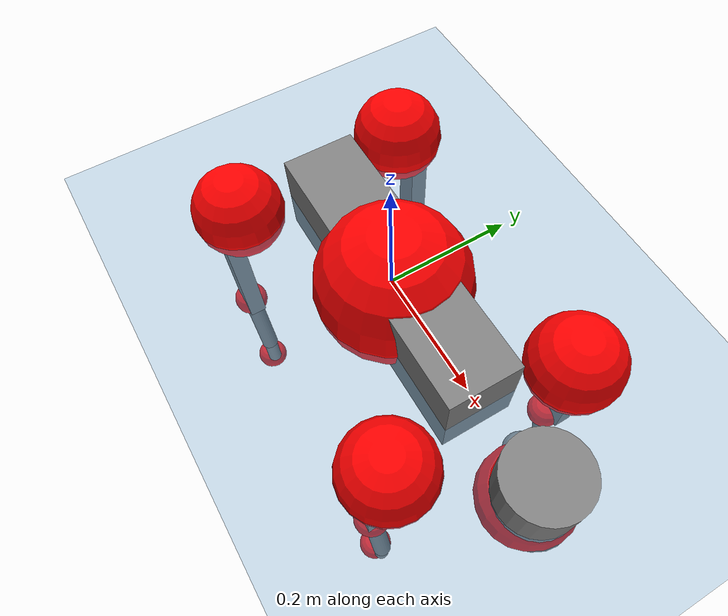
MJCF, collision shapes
<mujoco model="go2">
  <compiler angle="radian" assetdir="assets" balanceinertia="true" inertiafromgeom="false"/>

  <option timestep="0.005" density="1.2" viscosity="2e-05"/>

  <size nkey="1"/>

  <visual>
    <quality shadowsize="8192"/>
    <map shadowclip="0.5"/>
  </visual>

  <default>
    <default class="/">
      <geom contype="0" conaffinity="0" group="1" solref="-1000 -80"/>
      <site size="0.01 0.005 0.005" group="5"/>
      <general forcelimited="true" biastype="affine" gainprm="20" biasprm="0 -20 -0.5"/>
      <default class="go2">
        <joint armature="0.01" damping="0.01" frictionloss="0.2"/>
        <geom condim="1" margin="0.001"/>
        <default class="visual">
          <geom type="mesh" group="2"/>
        </default>
        <default class="collision">
          <geom group="3"/>
          <default class="foot">
            <geom size="0.022 0 0" condim="6" priority="1" friction="0.8 0.02 0.01" solimp="0.015 1 0.022"/>
          </default>
        </default>
        <default class="reward_collision_sphere">
          <geom group="5" rgba="1 0 0 1"/>
        </default>
      </default>
    </default>
  </default>

  <asset>
    <texture type="skybox" colorspace="auto" name="//unnamed_texture_0" builtin="gradient" rgb1="0.95 0.95 0.95" rgb2="0.95 0.95 0.95" width="100" height="600"/>
    <texture type="2d" colorspace="auto" name="texplane" builtin="checker" rgb1="0.345 0.575 0.748" rgb2="0.345 0.575 0.748" markrgb="1 1 1" width="512" height="512"/>
    <material name="MatPlane" class="/" texture="texplane" texuniform="true" texrepeat="2 2" specular="0.9"/>
    <material name="metal" class="/" rgba="0.9 0.95 0.95 1"/>
    <material name="black" class="/" rgba="0 0 0 1"/>
    <material name="white" class="/"/>
    <material name="gray" class="/" rgba="0.671705 0.692426 0.77427 1"/>
    <mesh name="base_0" class="/" file="base_0.obj"/>
    <mesh name="base_1" class="/" file="base_1.obj"/>
    <mesh name="base_2" class="/" file="base_2.obj"/>
    <mesh name="base_3" class="/" file="base_3.obj"/>
    <mesh name="base_4" class="/" file="base_4.obj"/>
    <mesh name="hip_0" class="/" file="hip_0.obj"/>
    <mesh name="hip_1" class="/" file="hip_1.obj"/>
    <mesh name="thigh_0" class="/" file="thigh_0.obj"/>
    <mesh name="thigh_1" class="/" file="thigh_1.obj"/>
    <mesh name="thigh_mirror_0" class="/" file="thigh_mirror_0.obj"/>
    <mesh name="thigh_mirror_1" class="/" file="thigh_mirror_1.obj"/>
    <mesh name="calf_0" class="/" file="calf_0.obj"/>
    <mesh name="calf_1" class="/" file="calf_1.obj"/>
    <mesh name="calf_mirror_0" class="/" file="calf_mirror_0.obj"/>
    <mesh name="calf_mirror_1" class="/" file="calf_mirror_1.obj"/>
    <mesh name="foot" class="/" file="foot.obj"/>
  </asset>

  <worldbody>
    <geom name="floor" class="/" size="100 100 0.125" type="plane" group="0" material="MatPlane"/>
    <light name="toplight_shadow" class="/" pos="0 0 5" dir="0.0990148 0.0990148 -0.990148" type="directional" ambient="0.04 0.04 0.04" diffuse="0.55 0.55 0.55" specular="0.12 0.12 0.12"/>
    <light name="toplight_fill" class="/" pos="0 0 5" dir="0.0990148 0.0990148 -0.990148" type="directional" castshadow="false" ambient="0.04 0.04 0.04" diffuse="0.3 0.3 0.3" specular="0.08 0.08 0.08"/>
    <body name="trunk" childclass="go2" pos="0.00748177 -2.89764e-05 0.00492564" quat="0.999995 -0.00163105 -0.00256154 -0.00111898">
      <inertial pos="0.0312493 -0.00544485 -0.00471803" quat="-0.0382871 0.698439 -0.0128165 0.71453" mass="12.1827" diaginertia="0.258785 0.277735 0.0416929"/>
      <joint name="//unnamed_joint_0" type="free" armature="0" damping="0" frictionloss="0"/>
      <geom name="//unnamed_geom_1" class="visual" material="black" mesh="base_0"/>
      <geom name="//unnamed_geom_2" class="visual" material="black" mesh="base_1"/>
      <geom name="//unnamed_geom_3" class="visual" material="black" mesh="base_2"/>
      <geom name="//unnamed_geom_4" class="visual" material="white" mesh="base_3"/>
      <geom name="//unnamed_geom_5" class="visual" material="gray" mesh="base_4"/>
      <geom name="trunk_1" class="collision" size="0.227587 0.0565639 0.0689656" type="box"/>
      <geom name="trunk_2" class="collision" size="0.0604962 0.0544465" pos="0.35324 0 0.011582" type="cylinder"/>
      <geom name="trunk_3" class="collision" size="0.0568664" pos="0.363156 0 -0.0694917"/>
      <geom name="//unnamed_geom_9" class="reward_collision_sphere" size="0.120992"/>
      <geom name="//unnamed_geom_10" class="reward_collision_sphere" size="0.0725954" pos="0.347043 0 -0.0521188"/>
      <site name="imu" pos="-0.0592978 0.0634946 0.064507" size="0.0120992"/>
      <camera name="track" pos="0 -2.46427 0" quat="0.707107 0.707107 0 0" mode="trackcom"/>
      <camera name="ego_camera" pos="0.386705 0 0.0521188" quat="-0.5 -0.5 0.5 0.5"/>
      <body name="FL_hip" pos="0.239727 0.0599868 0.00440138" quat="0.999981 0.00531274 0.0030374 -0.000502842">
        <inertial pos="-0.00160768 0.00368747 0.00165859" quat="0.515727 0.475283 0.523879 0.483408" mass="1.03897" diaginertia="0.0022283 0.00148398 0.000809037"/>
        <joint name="FL_hip_joint" pos="0 0 0" axis="0.999587 -0.0243184 0.0153198" stiffness="0.010701" range="-1.25929 1.02032" armature="0.00689076" damping="0.0204315" frictionloss="0.244012"/>
        <geom name="//unnamed_geom_11" class="visual" material="metal" mesh="hip_0"/>
        <geom name="//unnamed_geom_12" class="visual" material="gray" mesh="hip_1"/>
        <geom name="//unnamed_geom_13" class="collision" size="0.0556565 0.0241985" pos="0 0.0985708 0" quat="0.707107 0.707107 0 0" type="cylinder"/>
        <geom name="//unnamed_geom_14" class="reward_collision_sphere" size="0.0725954" pos="0 0.0862494 0"/>
        <body name="FL_thigh" pos="-0.0021762 0.119276 0.0030153" quat="1 -9.18554e-06 -8.67092e-06 -9.62405e-07">
          <inertial pos="-0.00601477 -0.0167147 -0.0251256" quat="0.8301 0.0826068 -0.0304889 0.550618" mass="2.08641" diaginertia="0.017582 0.0179962 0.00184333"/>
          <joint name="FL_thigh_joint" pos="0 0 0" axis="-0.00190073 0.999998 0.00102623" range="-1.55085 3.24831" armature="0.0154852" damping="0.0712203" frictionloss="0.244945"/>
          <geom name="//unnamed_geom_15" class="visual" material="metal" mesh="thigh_0"/>
          <geom name="//unnamed_geom_16" class="visual" material="gray" mesh="thigh_1"/>
          <geom name="//unnamed_geom_17" class="collision" size="0.128857 0.0148216 0.0205687" pos="0 0 -0.123348" quat="0.707107 0 0.707107 0" type="box"/>
          <body name="FL_calf" pos="-0.0130364 -0.0114854 -0.253982" quat="1 -9.79097e-05 0.000156833 0.000235484">
            <inertial pos="0.0100064 0.00488401 -0.170777" quat="0.708524 0.000390617 -0.00170658 0.705684" mass="0.377956" diaginertia="0.00404758 0.00430857 0.000114101"/>
            <joint name="FL_calf_joint" pos="0 0 0" axis="-0.00269943 0.999936 -0.0109479" stiffness="0.0613403" range="-2.86097 -0.640389" armature="0.0124072" damping="0" frictionloss="0.238921"/>
            <geom name="//unnamed_geom_18" class="visual" material="gray" mesh="calf_0"/>
            <geom name="//unnamed_geom_19" class="visual" material="black" mesh="calf_1"/>
            <geom name="FL_calf0" class="collision" size="0.0145191 0.0725954" pos="0.00991551 0 -0.0694917" quat="0.994493 0 -0.104807 0" type="cylinder"/>
            <geom name="//unnamed_geom_21" class="collision" size="0.0133092 0.0393225" pos="0.0247888 0 -0.171413" quat="0.999688 0 0.0249974 0" type="cylinder"/>
            <geom name="//unnamed_geom_22" class="visual" pos="0 0 -0.246696" quat="1 0 0 0" material="black" mesh="foot"/>
            <geom name="FL_foot" class="foot" size="0.0379463" pos="-0.00247888 0 -0.246696"/>
            <geom name="//unnamed_geom_24" class="reward_collision_sphere" size="0.0302481"/>
            <geom name="//unnamed_geom_25" class="reward_collision_sphere" size="0.0302481" pos="-0.00247888 0 -0.246696"/>
            <site name="FL_foot" class="foot" pos="-0.00247888 0 -0.246696" size="0.0120992"/>
          </body>
        </body>
      </body>
      <body name="FR_hip" pos="0.235017 -0.0622732 -0.0111571" quat="1 -0.000540303 0.000562714 -0.000361647">
        <inertial pos="-0.00487841 0.00464523 0.00162857" quat="0.528382 0.496844 0.515619 0.456175" mass="1.01874" diaginertia="0.00236361 0.00138493 0.000852404"/>
        <joint name="FR_hip_joint" pos="0 0 0" axis="0.999988 -0.000599189 0.00492155" stiffness="0.00460262" range="-1.20291 1.06989" armature="0.0118592" damping="0" frictionloss="0.208133"/>
        <geom name="//unnamed_geom_26" class="visual" pos="0 6.44123e-10 2.76278e-08" quat="4.63268e-05 1 0 0" material="metal" mesh="hip_0"/>
        <geom name="//unnamed_geom_27" class="visual" pos="0 1.0442e-09 -6.83341e-08" quat="4.63268e-05 1 0 0" material="gray" mesh="hip_1"/>
        <geom name="//unnamed_geom_28" class="collision" size="0.0556565 0.0241985" pos="0 -0.0985708 0" quat="0.707107 0.707107 0 0" type="cylinder"/>
        <geom name="//unnamed_geom_29" class="reward_collision_sphere" size="0.0725954" pos="0 -0.0862494 0"/>
        <body name="FR_thigh" pos="-0.00455643 -0.11779 0.008598" quat="0.999999 0.000679729 0.000356016 -0.00096712">
          <inertial pos="-0.00362642 0.0272997 -0.0264337" quat="0.501327 -0.00339904 0.067345 0.862627" mass="1.70316" diaginertia="0.0159464 0.0142455 0.00157279"/>
          <joint name="FR_thigh_joint" pos="0 0 0" axis="0.00902629 -0.999955 0.00297417" stiffness="0.0138681" range="-3.26806 1.39931" armature="0.016895" damping="0.015843" frictionloss="0.227308"/>
          <geom name="//unnamed_geom_30" class="visual" material="metal" mesh="thigh_mirror_0"/>
          <geom name="//unnamed_geom_31" class="visual" material="gray" mesh="thigh_mirror_1"/>
          <geom name="//unnamed_geom_32" class="collision" size="0.128857 0.0148216 0.0205687" pos="0 0 -0.123348" quat="0.707107 0 0.707107 0" type="box"/>
          <body name="FR_calf" pos="0.000207626 0.00133257 -0.245373" quat="1 0.000174392 2.77146e-05 -6.99608e-05">
            <inertial pos="0.00705635 0.00228629 -0.176835" quat="0.696746 -0.0275713 0.0117741 0.716691" mass="0.54885" diaginertia="0.00483084 0.00407861 0.000145603"/>
            <joint name="FR_calf_joint" pos="0 0 0" axis="-0.00247173 -0.999923 0.0121524" stiffness="0.0262152" range="0.870167 2.82615" armature="0.00731463" damping="0.004534" frictionloss="0.247512"/>
            <geom name="//unnamed_geom_33" class="visual" material="gray" mesh="calf_mirror_0"/>
            <geom name="//unnamed_geom_34" class="visual" material="black" mesh="calf_mirror_1"/>
            <geom name="FR_calf0" class="collision" size="0.015729 0.0725954" pos="0.0123944 0 -0.0694917" quat="0.995004 0 -0.0998334 0" type="cylinder"/>
            <geom name="//unnamed_geom_36" class="collision" size="0.0133092 0.0393225" pos="0.0247888 0 -0.171413" quat="0.999688 0 0.0249974 0" type="cylinder"/>
            <geom name="//unnamed_geom_37" class="visual" pos="0 0 -0.246696" quat="1 0 0 0" material="black" mesh="foot"/>
            <geom name="FR_foot" class="foot" size="0.0215142" pos="-0.00247888 0 -0.246696"/>
            <geom name="//unnamed_geom_39" class="reward_collision_sphere" size="0.0302481"/>
            <geom name="//unnamed_geom_40" class="reward_collision_sphere" size="0.0302481" pos="-0.00247888 0 -0.246696"/>
            <site name="FR_foot" class="foot" pos="-0.00247888 0 -0.246696" size="0.0120992"/>
          </body>
        </body>
      </body>
      <body name="RL_hip" pos="-0.239179 0.0618029 0.0108212" quat="1 -0.000200546 -0.000356361 -3.90215e-05">
        <inertial pos="0.00822177 0.00148253 0.010526" quat="0.505488 0.497888 0.496886 0.499693" mass="1.03878" diaginertia="0.00226432 0.00183218 0.00100778"/>
        <joint name="RL_hip_joint" pos="0 0 0" axis="-0.999926 0.0108217 0.00563786" range="-1.29346 0.839814" armature="0.0120569" damping="0.0417118" frictionloss="0.116583"/>
        <geom name="//unnamed_geom_41" class="visual" pos="-7.07756e-10 0 -1.38737e-07" quat="4.63268e-05 0 1 0" material="metal" mesh="hip_0"/>
        <geom name="//unnamed_geom_42" class="visual" pos="-1.14736e-09 0 -1.2304e-07" quat="4.63268e-05 0 1 0" material="gray" mesh="hip_1"/>
        <geom name="//unnamed_geom_43" class="collision" size="0.0556565 0.0241985" pos="0 0.0985708 0" quat="0.707107 0.707107 0 0" type="cylinder"/>
        <geom name="//unnamed_geom_44" class="reward_collision_sphere" size="0.0725954" pos="0 0.0862494 0"/>
        <body name="RL_thigh" pos="0.000886716 0.119018 -0.00188826" quat="1 -2.76175e-05 1.03375e-05 -1.0578e-05">
          <inertial pos="0.00541569 -0.0278235 -0.0252473" quat="0.854268 0.0573378 -0.0200427 0.516271" mass="1.95728" diaginertia="0.0188762 0.0161007 0.00197387"/>
          <joint name="RL_thigh_joint" pos="0 0 0" axis="0.0141104 0.998761 -0.0477129" stiffness="0.0130296" range="-0.317427 4.55514" armature="0.0101881" damping="0" frictionloss="0.222902"/>
          <geom name="//unnamed_geom_45" class="visual" material="metal" mesh="thigh_0"/>
          <geom name="//unnamed_geom_46" class="visual" material="gray" mesh="thigh_1"/>
          <geom name="//unnamed_geom_47" class="collision" size="0.128857 0.0148216 0.0205687" pos="0 0 -0.123348" quat="0.707107 0 0.707107 0" type="box"/>
          <body name="RL_calf" pos="0.00646722 -0.00405615 -0.238742" quat="1 0.000474773 -0.000195175 0.000207885">
            <inertial pos="0.00213575 0.00531834 -0.170655" quat="0.707339 0.016959 0.0360025 0.705753" mass="0.477473" diaginertia="0.00437379 0.0040328 0.000116628"/>
            <joint name="RL_calf_joint" pos="0 0 0" axis="-0.0186439 0.999665 0.0179299" stiffness="0.0637773" range="-2.77847 -0.826465" armature="0.0116103" damping="0.00671589" frictionloss="0.17102"/>
            <geom name="//unnamed_geom_48" class="visual" material="gray" mesh="calf_0"/>
            <geom name="//unnamed_geom_49" class="visual" material="black" mesh="calf_1"/>
            <geom name="RL_calf0" class="collision" size="0.015729 0.0725954" pos="0.0123944 0 -0.0694917" quat="0.995004 0 -0.0998334 0" type="cylinder"/>
            <geom name="//unnamed_geom_51" class="collision" size="0.0133092 0.0393225" pos="0.0247888 0 -0.171413" quat="0.999688 0 0.0249974 0" type="cylinder"/>
            <geom name="//unnamed_geom_52" class="visual" pos="0 0 -0.246696" quat="1 0 0 0" material="black" mesh="foot"/>
            <geom name="RL_foot" class="foot" size="0.0232659" pos="-0.00247888 0 -0.246696"/>
            <geom name="//unnamed_geom_54" class="reward_collision_sphere" size="0.0302481"/>
            <geom name="//unnamed_geom_55" class="reward_collision_sphere" size="0.0302481" pos="-0.00247888 0 -0.246696"/>
            <site name="RL_foot" class="foot" pos="-0.00247888 0 -0.246696" size="0.0120992"/>
          </body>
        </body>
      </body>
      <body name="RR_hip" pos="-0.238252 -0.05506 9.2705e-05" quat="0.999999 0.000632915 -0.00146727 0.000487016">
        <inertial pos="0.00819549 -0.0125176 0.00735973" quat="0.500083 0.49558 0.497464 0.506801" mass="1.31091" diaginertia="0.00299144 0.00196651 0.00115086"/>
        <joint name="RR_hip_joint" pos="0 0 0" axis="-0.999891 0.00883752 0.0117852" range="-1.11351 1.22355" armature="0.0151228" damping="0.0580571" frictionloss="0.204661"/>
        <geom name="//unnamed_geom_56" class="visual" pos="7.07503e-10 6.44123e-10 -1.66364e-07" quat="2.14617e-09 4.63268e-05 4.63268e-05 -1" material="metal" mesh="hip_0"/>
        <geom name="//unnamed_geom_57" class="visual" pos="1.14798e-09 1.0442e-09 -5.47055e-08" quat="2.14617e-09 4.63268e-05 4.63268e-05 -1" material="gray" mesh="hip_1"/>
        <geom name="//unnamed_geom_58" class="collision" size="0.0556565 0.0241985" pos="0 -0.0985708 0" quat="0.707107 0.707107 0 0" type="cylinder"/>
        <geom name="//unnamed_geom_59" class="reward_collision_sphere" size="0.0725954" pos="0 -0.0862494 0"/>
        <body name="RR_thigh" pos="-0.000511224 -0.116519 -0.0110671" quat="1 -0.000202434 -0.000238835 -3.96101e-06">
          <inertial pos="0.00167893 0.0199319 -0.0380863" quat="0.553325 -0.0212978 0.0843629 0.828408" mass="2.524" diaginertia="0.0183193 0.0183063 0.00181296"/>
          <joint name="RR_thigh_joint" pos="0 0 0" axis="-0.0162719 -0.999805 -0.0111566" range="-4.31606 0.318351" armature="0.0126895" damping="0.00675772" frictionloss="0.352202"/>
          <geom name="//unnamed_geom_60" class="visual" material="metal" mesh="thigh_mirror_0"/>
          <geom name="//unnamed_geom_61" class="visual" material="gray" mesh="thigh_mirror_1"/>
          <geom name="//unnamed_geom_62" class="collision" size="0.128857 0.0148216 0.0205687" pos="0 0 -0.123348" quat="0.707107 0 0.707107 0" type="box"/>
          <body name="RR_calf" pos="-0.0114003 8.14974e-05 -0.247453" quat="1 -0.000216687 8.57414e-05 -5.56821e-05">
            <inertial pos="0.00486607 0.000460735 -0.164893" quat="0.703812 -0.00518595 0.00186083 0.710365" mass="0.51092" diaginertia="0.00479799 0.00446874 0.000122017"/>
            <joint name="RR_calf_joint" pos="0 0 0" axis="0.0259454 -0.999565 0.0140233" stiffness="0.0410728" range="0.852756 2.60691" armature="0.0145691" damping="0.0647174" frictionloss="0.221815"/>
            <geom name="//unnamed_geom_63" class="visual" material="gray" mesh="calf_mirror_0"/>
            <geom name="//unnamed_geom_64" class="visual" material="black" mesh="calf_mirror_1"/>
            <geom name="RR_calf0" class="collision" size="0.015729 0.0725954" pos="0.0123944 0 -0.0694917" quat="0.995004 0 -0.0998334 0" type="cylinder"/>
            <geom name="//unnamed_geom_66" class="collision" size="0.0133092 0.0393225" pos="0.0247888 0 -0.171413" quat="0.999688 0 0.0249974 0" type="cylinder"/>
            <geom name="//unnamed_geom_67" class="visual" pos="0 0 -0.246696" quat="1 0 0 0" material="black" mesh="foot"/>
            <geom name="RR_foot" class="foot" size="0.0273515" pos="-0.00247888 0 -0.246696"/>
            <geom name="//unnamed_geom_69" class="reward_collision_sphere" size="0.0302481"/>
            <geom name="//unnamed_geom_70" class="reward_collision_sphere" size="0.0302481" pos="-0.00247888 0 -0.246696"/>
            <site name="RR_foot" class="foot" pos="-0.00247888 0 -0.246696" size="0.0120992"/>
          </body>
        </body>
      </body>
    </body>
  </worldbody>

  <contact>
    <pair class="/" geom1="floor" geom2="FL_foot" name="//unnamed_contact_0"/>
    <pair class="/" geom1="floor" geom2="FR_foot" name="//unnamed_contact_1"/>
    <pair class="/" geom1="floor" geom2="RL_foot" name="//unnamed_contact_2"/>
    <pair class="/" geom1="floor" geom2="RR_foot" name="//unnamed_contact_3"/>
  </contact>

  <actuator>
    <general name="FL_hip" class="/" joint="FL_hip_joint" forcerange="-28.1707 28.1707" gainprm="25.8868" biasprm="0 -25.8868 -0.454785"/>
    <general name="FL_thigh" class="/" joint="FL_thigh_joint" forcerange="-18.5369 18.5369" gainprm="25.8868" biasprm="0 -25.8868 -0.454785"/>
    <general name="FL_calf" class="/" joint="FL_calf_joint" forcerange="-76.6116 76.6116" gainprm="25.8868" biasprm="0 -25.8868 -0.454785"/>
    <general name="FR_hip" class="/" joint="FR_hip_joint" forcerange="-29.5685 29.5685" gainprm="25.8868" biasprm="0 -25.8868 -0.454785"/>
    <general name="FR_thigh" class="/" joint="FR_thigh_joint" forcerange="-22.1001 22.1001" gainprm="25.8868" biasprm="0 -25.8868 -0.454785"/>
    <general name="FR_calf" class="/" joint="FR_calf_joint" forcerange="-27.8516 27.8516" gainprm="25.8868" biasprm="0 -25.8868 -0.454785"/>
    <general name="RL_hip" class="/" joint="RL_hip_joint" forcerange="-17.1458 17.1458" gainprm="25.8868" biasprm="0 -25.8868 -0.454785"/>
    <general name="RL_thigh" class="/" joint="RL_thigh_joint" forcerange="-23.7048 23.7048" gainprm="25.8868" biasprm="0 -25.8868 -0.454785"/>
    <general name="RL_calf" class="/" joint="RL_calf_joint" forcerange="-59.5931 59.5931" gainprm="25.8868" biasprm="0 -25.8868 -0.454785"/>
    <general name="RR_hip" class="/" joint="RR_hip_joint" forcerange="-26.9211 26.9211" gainprm="25.8868" biasprm="0 -25.8868 -0.454785"/>
    <general name="RR_thigh" class="/" joint="RR_thigh_joint" forcerange="-41.9432 41.9432" gainprm="25.8868" biasprm="0 -25.8868 -0.454785"/>
    <general name="RR_calf" class="/" joint="RR_calf_joint" forcerange="-72.9723 72.9723" gainprm="25.8868" biasprm="0 -25.8868 -0.454785"/>
  </actuator>

  <sensor>
    <gyro site="imu" name="imu_angular_velocity"/>
    <velocimeter site="imu" name="imu_linear_velocity"/>
    <framelinvel objtype="site" objname="FL_foot" name="FL_foot_global_linear_velocity"/>
    <framelinvel objtype="site" objname="FR_foot" name="FR_foot_global_linear_velocity"/>
    <framelinvel objtype="site" objname="RL_foot" name="RL_foot_global_linear_velocity"/>
    <framelinvel objtype="site" objname="RR_foot" name="RR_foot_global_linear_velocity"/>
  </sensor>

  <keyframe>
    <key name="home" qpos="0 0 0.325 1 0 0 0 0.1 0.8 -1.5 -0.1 -0.8 1.5 -0.1 0.8 -1.5 0.1 -0.8 1.5"/>
  </keyframe>
</mujoco>
